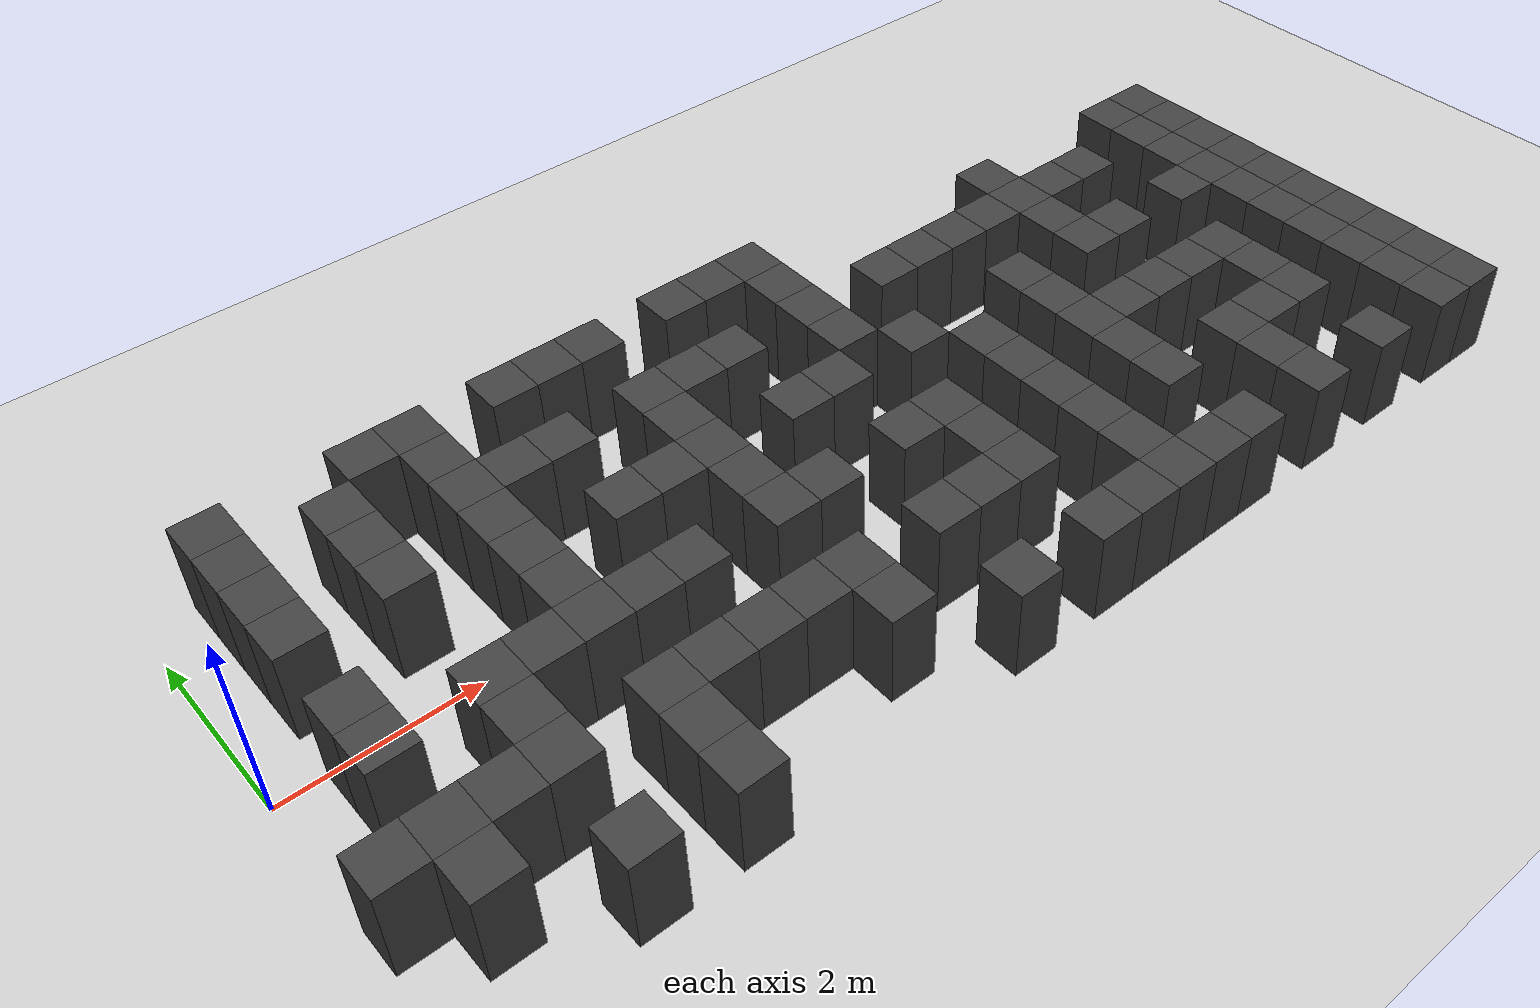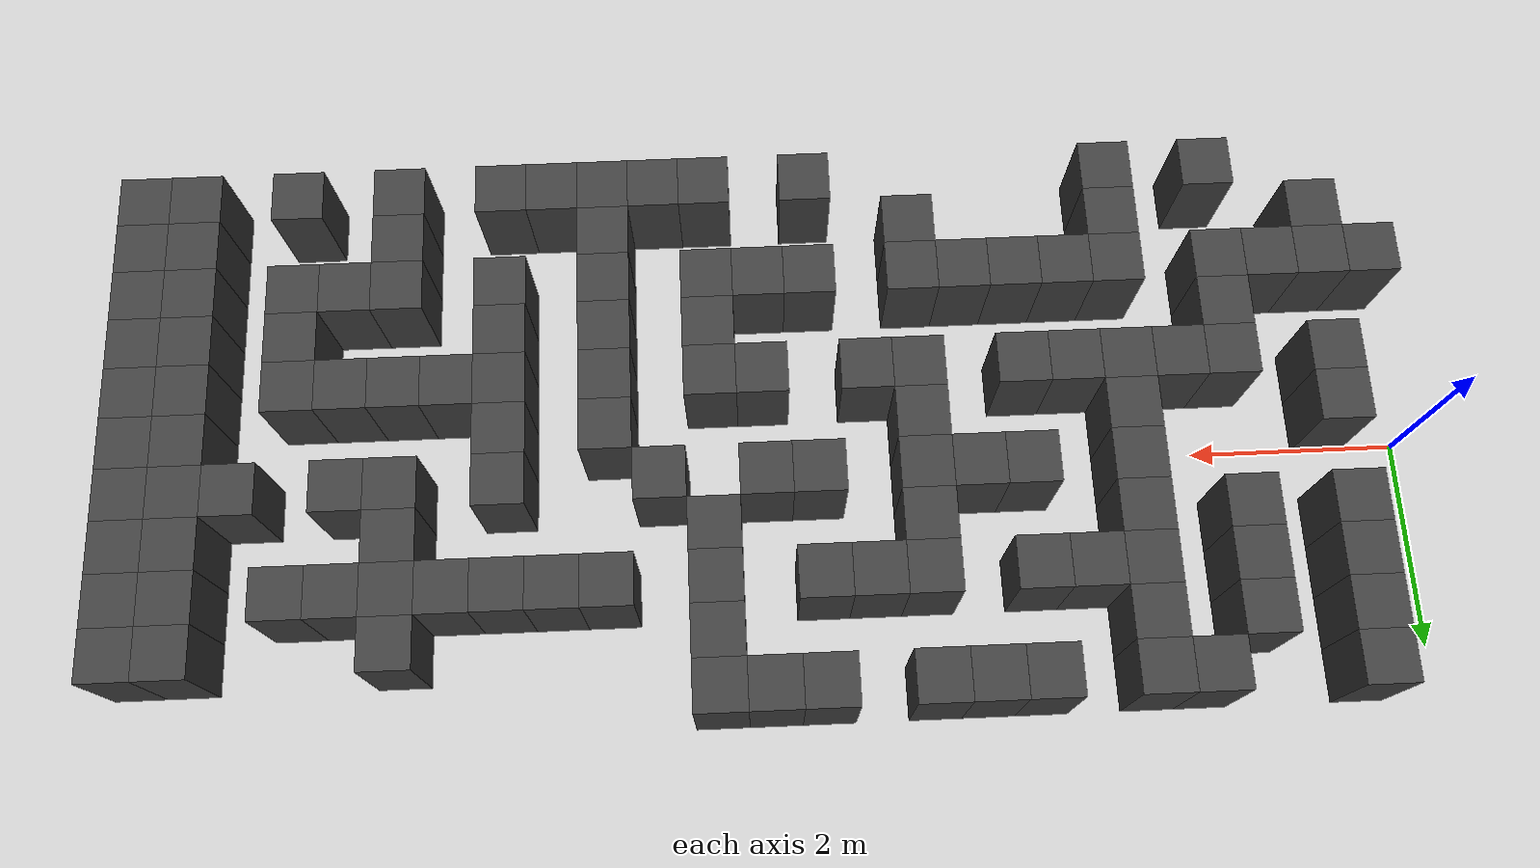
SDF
<sdf version="1.7">
 <world name="map_16734">
  <model name="ground_plane">
   <static>true</static>
   <link name="link">
    <collision name="collision">
     <geometry><plane><normal>0 0 1</normal><size>200 200</size></plane></geometry>
    </collision>
    <visual name="visual">
     <geometry><plane><normal>0 0 1</normal><size>200 200</size></plane></geometry>
     <material><ambient>0.8 0.8 0.8 1</ambient><diffuse>0.8 0.8 0.8 1</diffuse></material>
    </visual>
   </link>
  </model>
  <model name="maze_environment">
   <static>true</static>
   <link name="wall_504">
    <pose>0.750 2.250 0.500 0 0 0</pose>
    <collision name="col"><geometry><box><size>0.5 0.5 1.0</size></box></geometry></collision>
    <visual name="vis">
     <geometry><box><size>0.5 0.5 1.0</size></box></geometry>
     <material><ambient>0.15 0.15 0.15 1</ambient><diffuse>0.25 0.25 0.25 1</diffuse></material>
    </visual>
   </link>
   <link name="wall_505">
    <pose>2.250 2.250 0.500 0 0 0</pose>
    <collision name="col"><geometry><box><size>0.5 0.5 1.0</size></box></geometry></collision>
    <visual name="vis">
     <geometry><box><size>0.5 0.5 1.0</size></box></geometry>
     <material><ambient>0.15 0.15 0.15 1</ambient><diffuse>0.25 0.25 0.25 1</diffuse></material>
    </visual>
   </link>
   <link name="wall_506">
    <pose>2.750 2.250 0.500 0 0 0</pose>
    <collision name="col"><geometry><box><size>0.5 0.5 1.0</size></box></geometry></collision>
    <visual name="vis">
     <geometry><box><size>0.5 0.5 1.0</size></box></geometry>
     <material><ambient>0.15 0.15 0.15 1</ambient><diffuse>0.25 0.25 0.25 1</diffuse></material>
    </visual>
   </link>
   <link name="wall_507">
    <pose>3.750 2.250 0.500 0 0 0</pose>
    <collision name="col"><geometry><box><size>0.5 0.5 1.0</size></box></geometry></collision>
    <visual name="vis">
     <geometry><box><size>0.5 0.5 1.0</size></box></geometry>
     <material><ambient>0.15 0.15 0.15 1</ambient><diffuse>0.25 0.25 0.25 1</diffuse></material>
    </visual>
   </link>
   <link name="wall_508">
    <pose>4.250 2.250 0.500 0 0 0</pose>
    <collision name="col"><geometry><box><size>0.5 0.5 1.0</size></box></geometry></collision>
    <visual name="vis">
     <geometry><box><size>0.5 0.5 1.0</size></box></geometry>
     <material><ambient>0.15 0.15 0.15 1</ambient><diffuse>0.25 0.25 0.25 1</diffuse></material>
    </visual>
   </link>
   <link name="wall_509">
    <pose>4.750 2.250 0.500 0 0 0</pose>
    <collision name="col"><geometry><box><size>0.5 0.5 1.0</size></box></geometry></collision>
    <visual name="vis">
     <geometry><box><size>0.5 0.5 1.0</size></box></geometry>
     <material><ambient>0.15 0.15 0.15 1</ambient><diffuse>0.25 0.25 0.25 1</diffuse></material>
    </visual>
   </link>
   <link name="wall_510">
    <pose>5.750 2.250 0.500 0 0 0</pose>
    <collision name="col"><geometry><box><size>0.5 0.5 1.0</size></box></geometry></collision>
    <visual name="vis">
     <geometry><box><size>0.5 0.5 1.0</size></box></geometry>
     <material><ambient>0.15 0.15 0.15 1</ambient><diffuse>0.25 0.25 0.25 1</diffuse></material>
    </visual>
   </link>
   <link name="wall_511">
    <pose>6.250 2.250 0.500 0 0 0</pose>
    <collision name="col"><geometry><box><size>0.5 0.5 1.0</size></box></geometry></collision>
    <visual name="vis">
     <geometry><box><size>0.5 0.5 1.0</size></box></geometry>
     <material><ambient>0.15 0.15 0.15 1</ambient><diffuse>0.25 0.25 0.25 1</diffuse></material>
    </visual>
   </link>
   <link name="wall_512">
    <pose>6.750 2.250 0.500 0 0 0</pose>
    <collision name="col"><geometry><box><size>0.5 0.5 1.0</size></box></geometry></collision>
    <visual name="vis">
     <geometry><box><size>0.5 0.5 1.0</size></box></geometry>
     <material><ambient>0.15 0.15 0.15 1</ambient><diffuse>0.25 0.25 0.25 1</diffuse></material>
    </visual>
   </link>
   <link name="wall_528">
    <pose>0.750 1.750 0.500 0 0 0</pose>
    <collision name="col"><geometry><box><size>0.5 0.5 1.0</size></box></geometry></collision>
    <visual name="vis">
     <geometry><box><size>0.5 0.5 1.0</size></box></geometry>
     <material><ambient>0.15 0.15 0.15 1</ambient><diffuse>0.25 0.25 0.25 1</diffuse></material>
    </visual>
   </link>
   <link name="wall_529">
    <pose>1.750 1.750 0.500 0 0 0</pose>
    <collision name="col"><geometry><box><size>0.5 0.5 1.0</size></box></geometry></collision>
    <visual name="vis">
     <geometry><box><size>0.5 0.5 1.0</size></box></geometry>
     <material><ambient>0.15 0.15 0.15 1</ambient><diffuse>0.25 0.25 0.25 1</diffuse></material>
    </visual>
   </link>
   <link name="wall_530">
    <pose>2.750 1.750 0.500 0 0 0</pose>
    <collision name="col"><geometry><box><size>0.5 0.5 1.0</size></box></geometry></collision>
    <visual name="vis">
     <geometry><box><size>0.5 0.5 1.0</size></box></geometry>
     <material><ambient>0.15 0.15 0.15 1</ambient><diffuse>0.25 0.25 0.25 1</diffuse></material>
    </visual>
   </link>
   <link name="wall_531">
    <pose>6.750 1.750 0.500 0 0 0</pose>
    <collision name="col"><geometry><box><size>0.5 0.5 1.0</size></box></geometry></collision>
    <visual name="vis">
     <geometry><box><size>0.5 0.5 1.0</size></box></geometry>
     <material><ambient>0.15 0.15 0.15 1</ambient><diffuse>0.25 0.25 0.25 1</diffuse></material>
    </visual>
   </link>
   <link name="wall_532">
    <pose>9.750 1.750 0.500 0 0 0</pose>
    <collision name="col"><geometry><box><size>0.5 0.5 1.0</size></box></geometry></collision>
    <visual name="vis">
     <geometry><box><size>0.5 0.5 1.0</size></box></geometry>
     <material><ambient>0.15 0.15 0.15 1</ambient><diffuse>0.25 0.25 0.25 1</diffuse></material>
    </visual>
   </link>
   <link name="wall_533">
    <pose>11.750 1.750 0.500 0 0 0</pose>
    <collision name="col"><geometry><box><size>0.5 0.5 1.0</size></box></geometry></collision>
    <visual name="vis">
     <geometry><box><size>0.5 0.5 1.0</size></box></geometry>
     <material><ambient>0.15 0.15 0.15 1</ambient><diffuse>0.25 0.25 0.25 1</diffuse></material>
    </visual>
   </link>
   <link name="wall_534">
    <pose>12.250 1.750 0.500 0 0 0</pose>
    <collision name="col"><geometry><box><size>0.5 0.5 1.0</size></box></geometry></collision>
    <visual name="vis">
     <geometry><box><size>0.5 0.5 1.0</size></box></geometry>
     <material><ambient>0.15 0.15 0.15 1</ambient><diffuse>0.25 0.25 0.25 1</diffuse></material>
    </visual>
   </link>
   <link name="wall_553">
    <pose>0.750 1.250 0.500 0 0 0</pose>
    <collision name="col"><geometry><box><size>0.5 0.5 1.0</size></box></geometry></collision>
    <visual name="vis">
     <geometry><box><size>0.5 0.5 1.0</size></box></geometry>
     <material><ambient>0.15 0.15 0.15 1</ambient><diffuse>0.25 0.25 0.25 1</diffuse></material>
    </visual>
   </link>
   <link name="wall_554">
    <pose>1.750 1.250 0.500 0 0 0</pose>
    <collision name="col"><geometry><box><size>0.5 0.5 1.0</size></box></geometry></collision>
    <visual name="vis">
     <geometry><box><size>0.5 0.5 1.0</size></box></geometry>
     <material><ambient>0.15 0.15 0.15 1</ambient><diffuse>0.25 0.25 0.25 1</diffuse></material>
    </visual>
   </link>
   <link name="wall_555">
    <pose>2.750 1.250 0.500 0 0 0</pose>
    <collision name="col"><geometry><box><size>0.5 0.5 1.0</size></box></geometry></collision>
    <visual name="vis">
     <geometry><box><size>0.5 0.5 1.0</size></box></geometry>
     <material><ambient>0.15 0.15 0.15 1</ambient><diffuse>0.25 0.25 0.25 1</diffuse></material>
    </visual>
   </link>
   <link name="wall_556">
    <pose>3.250 1.250 0.500 0 0 0</pose>
    <collision name="col"><geometry><box><size>0.5 0.5 1.0</size></box></geometry></collision>
    <visual name="vis">
     <geometry><box><size>0.5 0.5 1.0</size></box></geometry>
     <material><ambient>0.15 0.15 0.15 1</ambient><diffuse>0.25 0.25 0.25 1</diffuse></material>
    </visual>
   </link>
   <link name="wall_557">
    <pose>3.750 1.250 0.500 0 0 0</pose>
    <collision name="col"><geometry><box><size>0.5 0.5 1.0</size></box></geometry></collision>
    <visual name="vis">
     <geometry><box><size>0.5 0.5 1.0</size></box></geometry>
     <material><ambient>0.15 0.15 0.15 1</ambient><diffuse>0.25 0.25 0.25 1</diffuse></material>
    </visual>
   </link>
   <link name="wall_558">
    <pose>4.750 1.250 0.500 0 0 0</pose>
    <collision name="col"><geometry><box><size>0.5 0.5 1.0</size></box></geometry></collision>
    <visual name="vis">
     <geometry><box><size>0.5 0.5 1.0</size></box></geometry>
     <material><ambient>0.15 0.15 0.15 1</ambient><diffuse>0.25 0.25 0.25 1</diffuse></material>
    </visual>
   </link>
   <link name="wall_559">
    <pose>5.250 1.250 0.500 0 0 0</pose>
    <collision name="col"><geometry><box><size>0.5 0.5 1.0</size></box></geometry></collision>
    <visual name="vis">
     <geometry><box><size>0.5 0.5 1.0</size></box></geometry>
     <material><ambient>0.15 0.15 0.15 1</ambient><diffuse>0.25 0.25 0.25 1</diffuse></material>
    </visual>
   </link>
   <link name="wall_560">
    <pose>5.750 1.250 0.500 0 0 0</pose>
    <collision name="col"><geometry><box><size>0.5 0.5 1.0</size></box></geometry></collision>
    <visual name="vis">
     <geometry><box><size>0.5 0.5 1.0</size></box></geometry>
     <material><ambient>0.15 0.15 0.15 1</ambient><diffuse>0.25 0.25 0.25 1</diffuse></material>
    </visual>
   </link>
   <link name="wall_561">
    <pose>6.750 1.250 0.500 0 0 0</pose>
    <collision name="col"><geometry><box><size>0.5 0.5 1.0</size></box></geometry></collision>
    <visual name="vis">
     <geometry><box><size>0.5 0.5 1.0</size></box></geometry>
     <material><ambient>0.15 0.15 0.15 1</ambient><diffuse>0.25 0.25 0.25 1</diffuse></material>
    </visual>
   </link>
   <link name="wall_562">
    <pose>7.750 1.250 0.500 0 0 0</pose>
    <collision name="col"><geometry><box><size>0.5 0.5 1.0</size></box></geometry></collision>
    <visual name="vis">
     <geometry><box><size>0.5 0.5 1.0</size></box></geometry>
     <material><ambient>0.15 0.15 0.15 1</ambient><diffuse>0.25 0.25 0.25 1</diffuse></material>
    </visual>
   </link>
   <link name="wall_563">
    <pose>8.250 1.250 0.500 0 0 0</pose>
    <collision name="col"><geometry><box><size>0.5 0.5 1.0</size></box></geometry></collision>
    <visual name="vis">
     <geometry><box><size>0.5 0.5 1.0</size></box></geometry>
     <material><ambient>0.15 0.15 0.15 1</ambient><diffuse>0.25 0.25 0.25 1</diffuse></material>
    </visual>
   </link>
   <link name="wall_564">
    <pose>8.750 1.250 0.500 0 0 0</pose>
    <collision name="col"><geometry><box><size>0.5 0.5 1.0</size></box></geometry></collision>
    <visual name="vis">
     <geometry><box><size>0.5 0.5 1.0</size></box></geometry>
     <material><ambient>0.15 0.15 0.15 1</ambient><diffuse>0.25 0.25 0.25 1</diffuse></material>
    </visual>
   </link>
   <link name="wall_565">
    <pose>9.250 1.250 0.500 0 0 0</pose>
    <collision name="col"><geometry><box><size>0.5 0.5 1.0</size></box></geometry></collision>
    <visual name="vis">
     <geometry><box><size>0.5 0.5 1.0</size></box></geometry>
     <material><ambient>0.15 0.15 0.15 1</ambient><diffuse>0.25 0.25 0.25 1</diffuse></material>
    </visual>
   </link>
   <link name="wall_566">
    <pose>9.750 1.250 0.500 0 0 0</pose>
    <collision name="col"><geometry><box><size>0.5 0.5 1.0</size></box></geometry></collision>
    <visual name="vis">
     <geometry><box><size>0.5 0.5 1.0</size></box></geometry>
     <material><ambient>0.15 0.15 0.15 1</ambient><diffuse>0.25 0.25 0.25 1</diffuse></material>
    </visual>
   </link>
   <link name="wall_567">
    <pose>10.250 1.250 0.500 0 0 0</pose>
    <collision name="col"><geometry><box><size>0.5 0.5 1.0</size></box></geometry></collision>
    <visual name="vis">
     <geometry><box><size>0.5 0.5 1.0</size></box></geometry>
     <material><ambient>0.15 0.15 0.15 1</ambient><diffuse>0.25 0.25 0.25 1</diffuse></material>
    </visual>
   </link>
   <link name="wall_568">
    <pose>10.750 1.250 0.500 0 0 0</pose>
    <collision name="col"><geometry><box><size>0.5 0.5 1.0</size></box></geometry></collision>
    <visual name="vis">
     <geometry><box><size>0.5 0.5 1.0</size></box></geometry>
     <material><ambient>0.15 0.15 0.15 1</ambient><diffuse>0.25 0.25 0.25 1</diffuse></material>
    </visual>
   </link>
   <link name="wall_569">
    <pose>11.750 1.250 0.500 0 0 0</pose>
    <collision name="col"><geometry><box><size>0.5 0.5 1.0</size></box></geometry></collision>
    <visual name="vis">
     <geometry><box><size>0.5 0.5 1.0</size></box></geometry>
     <material><ambient>0.15 0.15 0.15 1</ambient><diffuse>0.25 0.25 0.25 1</diffuse></material>
    </visual>
   </link>
   <link name="wall_570">
    <pose>12.250 1.250 0.500 0 0 0</pose>
    <collision name="col"><geometry><box><size>0.5 0.5 1.0</size></box></geometry></collision>
    <visual name="vis">
     <geometry><box><size>0.5 0.5 1.0</size></box></geometry>
     <material><ambient>0.15 0.15 0.15 1</ambient><diffuse>0.25 0.25 0.25 1</diffuse></material>
    </visual>
   </link>
   <link name="wall_577">
    <pose>0.750 0.750 0.500 0 0 0</pose>
    <collision name="col"><geometry><box><size>0.5 0.5 1.0</size></box></geometry></collision>
    <visual name="vis">
     <geometry><box><size>0.5 0.5 1.0</size></box></geometry>
     <material><ambient>0.15 0.15 0.15 1</ambient><diffuse>0.25 0.25 0.25 1</diffuse></material>
    </visual>
   </link>
   <link name="wall_578">
    <pose>1.750 0.750 0.500 0 0 0</pose>
    <collision name="col"><geometry><box><size>0.5 0.5 1.0</size></box></geometry></collision>
    <visual name="vis">
     <geometry><box><size>0.5 0.5 1.0</size></box></geometry>
     <material><ambient>0.15 0.15 0.15 1</ambient><diffuse>0.25 0.25 0.25 1</diffuse></material>
    </visual>
   </link>
   <link name="wall_579">
    <pose>2.750 0.750 0.500 0 0 0</pose>
    <collision name="col"><geometry><box><size>0.5 0.5 1.0</size></box></geometry></collision>
    <visual name="vis">
     <geometry><box><size>0.5 0.5 1.0</size></box></geometry>
     <material><ambient>0.15 0.15 0.15 1</ambient><diffuse>0.25 0.25 0.25 1</diffuse></material>
    </visual>
   </link>
   <link name="wall_580">
    <pose>4.750 0.750 0.500 0 0 0</pose>
    <collision name="col"><geometry><box><size>0.5 0.5 1.0</size></box></geometry></collision>
    <visual name="vis">
     <geometry><box><size>0.5 0.5 1.0</size></box></geometry>
     <material><ambient>0.15 0.15 0.15 1</ambient><diffuse>0.25 0.25 0.25 1</diffuse></material>
    </visual>
   </link>
   <link name="wall_581">
    <pose>6.750 0.750 0.500 0 0 0</pose>
    <collision name="col"><geometry><box><size>0.5 0.5 1.0</size></box></geometry></collision>
    <visual name="vis">
     <geometry><box><size>0.5 0.5 1.0</size></box></geometry>
     <material><ambient>0.15 0.15 0.15 1</ambient><diffuse>0.25 0.25 0.25 1</diffuse></material>
    </visual>
   </link>
   <link name="wall_582">
    <pose>9.750 0.750 0.500 0 0 0</pose>
    <collision name="col"><geometry><box><size>0.5 0.5 1.0</size></box></geometry></collision>
    <visual name="vis">
     <geometry><box><size>0.5 0.5 1.0</size></box></geometry>
     <material><ambient>0.15 0.15 0.15 1</ambient><diffuse>0.25 0.25 0.25 1</diffuse></material>
    </visual>
   </link>
   <link name="wall_583">
    <pose>11.750 0.750 0.500 0 0 0</pose>
    <collision name="col"><geometry><box><size>0.5 0.5 1.0</size></box></geometry></collision>
    <visual name="vis">
     <geometry><box><size>0.5 0.5 1.0</size></box></geometry>
     <material><ambient>0.15 0.15 0.15 1</ambient><diffuse>0.25 0.25 0.25 1</diffuse></material>
    </visual>
   </link>
   <link name="wall_584">
    <pose>12.250 0.750 0.500 0 0 0</pose>
    <collision name="col"><geometry><box><size>0.5 0.5 1.0</size></box></geometry></collision>
    <visual name="vis">
     <geometry><box><size>0.5 0.5 1.0</size></box></geometry>
     <material><ambient>0.15 0.15 0.15 1</ambient><diffuse>0.25 0.25 0.25 1</diffuse></material>
    </visual>
   </link>
   <link name="wall_602">
    <pose>2.750 0.250 0.500 0 0 0</pose>
    <collision name="col"><geometry><box><size>0.5 0.5 1.0</size></box></geometry></collision>
    <visual name="vis">
     <geometry><box><size>0.5 0.5 1.0</size></box></geometry>
     <material><ambient>0.15 0.15 0.15 1</ambient><diffuse>0.25 0.25 0.25 1</diffuse></material>
    </visual>
   </link>
   <link name="wall_603">
    <pose>3.750 0.250 0.500 0 0 0</pose>
    <collision name="col"><geometry><box><size>0.5 0.5 1.0</size></box></geometry></collision>
    <visual name="vis">
     <geometry><box><size>0.5 0.5 1.0</size></box></geometry>
     <material><ambient>0.15 0.15 0.15 1</ambient><diffuse>0.25 0.25 0.25 1</diffuse></material>
    </visual>
   </link>
   <link name="wall_604">
    <pose>4.250 0.250 0.500 0 0 0</pose>
    <collision name="col"><geometry><box><size>0.5 0.5 1.0</size></box></geometry></collision>
    <visual name="vis">
     <geometry><box><size>0.5 0.5 1.0</size></box></geometry>
     <material><ambient>0.15 0.15 0.15 1</ambient><diffuse>0.25 0.25 0.25 1</diffuse></material>
    </visual>
   </link>
   <link name="wall_605">
    <pose>4.750 0.250 0.500 0 0 0</pose>
    <collision name="col"><geometry><box><size>0.5 0.5 1.0</size></box></geometry></collision>
    <visual name="vis">
     <geometry><box><size>0.5 0.5 1.0</size></box></geometry>
     <material><ambient>0.15 0.15 0.15 1</ambient><diffuse>0.25 0.25 0.25 1</diffuse></material>
    </visual>
   </link>
   <link name="wall_606">
    <pose>5.750 0.250 0.500 0 0 0</pose>
    <collision name="col"><geometry><box><size>0.5 0.5 1.0</size></box></geometry></collision>
    <visual name="vis">
     <geometry><box><size>0.5 0.5 1.0</size></box></geometry>
     <material><ambient>0.15 0.15 0.15 1</ambient><diffuse>0.25 0.25 0.25 1</diffuse></material>
    </visual>
   </link>
   <link name="wall_607">
    <pose>6.250 0.250 0.500 0 0 0</pose>
    <collision name="col"><geometry><box><size>0.5 0.5 1.0</size></box></geometry></collision>
    <visual name="vis">
     <geometry><box><size>0.5 0.5 1.0</size></box></geometry>
     <material><ambient>0.15 0.15 0.15 1</ambient><diffuse>0.25 0.25 0.25 1</diffuse></material>
    </visual>
   </link>
   <link name="wall_608">
    <pose>7.250 0.250 0.500 0 0 0</pose>
    <collision name="col"><geometry><box><size>0.5 0.5 1.0</size></box></geometry></collision>
    <visual name="vis">
     <geometry><box><size>0.5 0.5 1.0</size></box></geometry>
     <material><ambient>0.15 0.15 0.15 1</ambient><diffuse>0.25 0.25 0.25 1</diffuse></material>
    </visual>
   </link>
   <link name="wall_609">
    <pose>8.750 0.250 0.500 0 0 0</pose>
    <collision name="col"><geometry><box><size>0.5 0.5 1.0</size></box></geometry></collision>
    <visual name="vis">
     <geometry><box><size>0.5 0.5 1.0</size></box></geometry>
     <material><ambient>0.15 0.15 0.15 1</ambient><diffuse>0.25 0.25 0.25 1</diffuse></material>
    </visual>
   </link>
   <link name="wall_610">
    <pose>9.750 0.250 0.500 0 0 0</pose>
    <collision name="col"><geometry><box><size>0.5 0.5 1.0</size></box></geometry></collision>
    <visual name="vis">
     <geometry><box><size>0.5 0.5 1.0</size></box></geometry>
     <material><ambient>0.15 0.15 0.15 1</ambient><diffuse>0.25 0.25 0.25 1</diffuse></material>
    </visual>
   </link>
   <link name="wall_611">
    <pose>10.250 0.250 0.500 0 0 0</pose>
    <collision name="col"><geometry><box><size>0.5 0.5 1.0</size></box></geometry></collision>
    <visual name="vis">
     <geometry><box><size>0.5 0.5 1.0</size></box></geometry>
     <material><ambient>0.15 0.15 0.15 1</ambient><diffuse>0.25 0.25 0.25 1</diffuse></material>
    </visual>
   </link>
   <link name="wall_612">
    <pose>11.250 0.250 0.500 0 0 0</pose>
    <collision name="col"><geometry><box><size>0.5 0.5 1.0</size></box></geometry></collision>
    <visual name="vis">
     <geometry><box><size>0.5 0.5 1.0</size></box></geometry>
     <material><ambient>0.15 0.15 0.15 1</ambient><diffuse>0.25 0.25 0.25 1</diffuse></material>
    </visual>
   </link>
   <link name="wall_613">
    <pose>11.750 0.250 0.500 0 0 0</pose>
    <collision name="col"><geometry><box><size>0.5 0.5 1.0</size></box></geometry></collision>
    <visual name="vis">
     <geometry><box><size>0.5 0.5 1.0</size></box></geometry>
     <material><ambient>0.15 0.15 0.15 1</ambient><diffuse>0.25 0.25 0.25 1</diffuse></material>
    </visual>
   </link>
   <link name="wall_614">
    <pose>12.250 0.250 0.500 0 0 0</pose>
    <collision name="col"><geometry><box><size>0.5 0.5 1.0</size></box></geometry></collision>
    <visual name="vis">
     <geometry><box><size>0.5 0.5 1.0</size></box></geometry>
     <material><ambient>0.15 0.15 0.15 1</ambient><diffuse>0.25 0.25 0.25 1</diffuse></material>
    </visual>
   </link>
   <link name="wall_621">
    <pose>0.750 -0.250 0.500 0 0 0</pose>
    <collision name="col"><geometry><box><size>0.5 0.5 1.0</size></box></geometry></collision>
    <visual name="vis">
     <geometry><box><size>0.5 0.5 1.0</size></box></geometry>
     <material><ambient>0.15 0.15 0.15 1</ambient><diffuse>0.25 0.25 0.25 1</diffuse></material>
    </visual>
   </link>
   <link name="wall_622">
    <pose>2.750 -0.250 0.500 0 0 0</pose>
    <collision name="col"><geometry><box><size>0.5 0.5 1.0</size></box></geometry></collision>
    <visual name="vis">
     <geometry><box><size>0.5 0.5 1.0</size></box></geometry>
     <material><ambient>0.15 0.15 0.15 1</ambient><diffuse>0.25 0.25 0.25 1</diffuse></material>
    </visual>
   </link>
   <link name="wall_623">
    <pose>4.750 -0.250 0.500 0 0 0</pose>
    <collision name="col"><geometry><box><size>0.5 0.5 1.0</size></box></geometry></collision>
    <visual name="vis">
     <geometry><box><size>0.5 0.5 1.0</size></box></geometry>
     <material><ambient>0.15 0.15 0.15 1</ambient><diffuse>0.25 0.25 0.25 1</diffuse></material>
    </visual>
   </link>
   <link name="wall_624">
    <pose>7.750 -0.250 0.500 0 0 0</pose>
    <collision name="col"><geometry><box><size>0.5 0.5 1.0</size></box></geometry></collision>
    <visual name="vis">
     <geometry><box><size>0.5 0.5 1.0</size></box></geometry>
     <material><ambient>0.15 0.15 0.15 1</ambient><diffuse>0.25 0.25 0.25 1</diffuse></material>
    </visual>
   </link>
   <link name="wall_625">
    <pose>8.750 -0.250 0.500 0 0 0</pose>
    <collision name="col"><geometry><box><size>0.5 0.5 1.0</size></box></geometry></collision>
    <visual name="vis">
     <geometry><box><size>0.5 0.5 1.0</size></box></geometry>
     <material><ambient>0.15 0.15 0.15 1</ambient><diffuse>0.25 0.25 0.25 1</diffuse></material>
    </visual>
   </link>
   <link name="wall_626">
    <pose>11.750 -0.250 0.500 0 0 0</pose>
    <collision name="col"><geometry><box><size>0.5 0.5 1.0</size></box></geometry></collision>
    <visual name="vis">
     <geometry><box><size>0.5 0.5 1.0</size></box></geometry>
     <material><ambient>0.15 0.15 0.15 1</ambient><diffuse>0.25 0.25 0.25 1</diffuse></material>
    </visual>
   </link>
   <link name="wall_627">
    <pose>12.250 -0.250 0.500 0 0 0</pose>
    <collision name="col"><geometry><box><size>0.5 0.5 1.0</size></box></geometry></collision>
    <visual name="vis">
     <geometry><box><size>0.5 0.5 1.0</size></box></geometry>
     <material><ambient>0.15 0.15 0.15 1</ambient><diffuse>0.25 0.25 0.25 1</diffuse></material>
    </visual>
   </link>
   <link name="wall_649">
    <pose>0.750 -0.750 0.500 0 0 0</pose>
    <collision name="col"><geometry><box><size>0.5 0.5 1.0</size></box></geometry></collision>
    <visual name="vis">
     <geometry><box><size>0.5 0.5 1.0</size></box></geometry>
     <material><ambient>0.15 0.15 0.15 1</ambient><diffuse>0.25 0.25 0.25 1</diffuse></material>
    </visual>
   </link>
   <link name="wall_650">
    <pose>1.750 -0.750 0.500 0 0 0</pose>
    <collision name="col"><geometry><box><size>0.5 0.5 1.0</size></box></geometry></collision>
    <visual name="vis">
     <geometry><box><size>0.5 0.5 1.0</size></box></geometry>
     <material><ambient>0.15 0.15 0.15 1</ambient><diffuse>0.25 0.25 0.25 1</diffuse></material>
    </visual>
   </link>
   <link name="wall_651">
    <pose>2.250 -0.750 0.500 0 0 0</pose>
    <collision name="col"><geometry><box><size>0.5 0.5 1.0</size></box></geometry></collision>
    <visual name="vis">
     <geometry><box><size>0.5 0.5 1.0</size></box></geometry>
     <material><ambient>0.15 0.15 0.15 1</ambient><diffuse>0.25 0.25 0.25 1</diffuse></material>
    </visual>
   </link>
   <link name="wall_652">
    <pose>2.750 -0.750 0.500 0 0 0</pose>
    <collision name="col"><geometry><box><size>0.5 0.5 1.0</size></box></geometry></collision>
    <visual name="vis">
     <geometry><box><size>0.5 0.5 1.0</size></box></geometry>
     <material><ambient>0.15 0.15 0.15 1</ambient><diffuse>0.25 0.25 0.25 1</diffuse></material>
    </visual>
   </link>
   <link name="wall_653">
    <pose>3.250 -0.750 0.500 0 0 0</pose>
    <collision name="col"><geometry><box><size>0.5 0.5 1.0</size></box></geometry></collision>
    <visual name="vis">
     <geometry><box><size>0.5 0.5 1.0</size></box></geometry>
     <material><ambient>0.15 0.15 0.15 1</ambient><diffuse>0.25 0.25 0.25 1</diffuse></material>
    </visual>
   </link>
   <link name="wall_654">
    <pose>3.750 -0.750 0.500 0 0 0</pose>
    <collision name="col"><geometry><box><size>0.5 0.5 1.0</size></box></geometry></collision>
    <visual name="vis">
     <geometry><box><size>0.5 0.5 1.0</size></box></geometry>
     <material><ambient>0.15 0.15 0.15 1</ambient><diffuse>0.25 0.25 0.25 1</diffuse></material>
    </visual>
   </link>
   <link name="wall_655">
    <pose>4.750 -0.750 0.500 0 0 0</pose>
    <collision name="col"><geometry><box><size>0.5 0.5 1.0</size></box></geometry></collision>
    <visual name="vis">
     <geometry><box><size>0.5 0.5 1.0</size></box></geometry>
     <material><ambient>0.15 0.15 0.15 1</ambient><diffuse>0.25 0.25 0.25 1</diffuse></material>
    </visual>
   </link>
   <link name="wall_656">
    <pose>5.250 -0.750 0.500 0 0 0</pose>
    <collision name="col"><geometry><box><size>0.5 0.5 1.0</size></box></geometry></collision>
    <visual name="vis">
     <geometry><box><size>0.5 0.5 1.0</size></box></geometry>
     <material><ambient>0.15 0.15 0.15 1</ambient><diffuse>0.25 0.25 0.25 1</diffuse></material>
    </visual>
   </link>
   <link name="wall_657">
    <pose>6.250 -0.750 0.500 0 0 0</pose>
    <collision name="col"><geometry><box><size>0.5 0.5 1.0</size></box></geometry></collision>
    <visual name="vis">
     <geometry><box><size>0.5 0.5 1.0</size></box></geometry>
     <material><ambient>0.15 0.15 0.15 1</ambient><diffuse>0.25 0.25 0.25 1</diffuse></material>
    </visual>
   </link>
   <link name="wall_658">
    <pose>6.750 -0.750 0.500 0 0 0</pose>
    <collision name="col"><geometry><box><size>0.5 0.5 1.0</size></box></geometry></collision>
    <visual name="vis">
     <geometry><box><size>0.5 0.5 1.0</size></box></geometry>
     <material><ambient>0.15 0.15 0.15 1</ambient><diffuse>0.25 0.25 0.25 1</diffuse></material>
    </visual>
   </link>
   <link name="wall_659">
    <pose>7.750 -0.750 0.500 0 0 0</pose>
    <collision name="col"><geometry><box><size>0.5 0.5 1.0</size></box></geometry></collision>
    <visual name="vis">
     <geometry><box><size>0.5 0.5 1.0</size></box></geometry>
     <material><ambient>0.15 0.15 0.15 1</ambient><diffuse>0.25 0.25 0.25 1</diffuse></material>
    </visual>
   </link>
   <link name="wall_660">
    <pose>8.750 -0.750 0.500 0 0 0</pose>
    <collision name="col"><geometry><box><size>0.5 0.5 1.0</size></box></geometry></collision>
    <visual name="vis">
     <geometry><box><size>0.5 0.5 1.0</size></box></geometry>
     <material><ambient>0.15 0.15 0.15 1</ambient><diffuse>0.25 0.25 0.25 1</diffuse></material>
    </visual>
   </link>
   <link name="wall_661">
    <pose>9.250 -0.750 0.500 0 0 0</pose>
    <collision name="col"><geometry><box><size>0.5 0.5 1.0</size></box></geometry></collision>
    <visual name="vis">
     <geometry><box><size>0.5 0.5 1.0</size></box></geometry>
     <material><ambient>0.15 0.15 0.15 1</ambient><diffuse>0.25 0.25 0.25 1</diffuse></material>
    </visual>
   </link>
   <link name="wall_662">
    <pose>9.750 -0.750 0.500 0 0 0</pose>
    <collision name="col"><geometry><box><size>0.5 0.5 1.0</size></box></geometry></collision>
    <visual name="vis">
     <geometry><box><size>0.5 0.5 1.0</size></box></geometry>
     <material><ambient>0.15 0.15 0.15 1</ambient><diffuse>0.25 0.25 0.25 1</diffuse></material>
    </visual>
   </link>
   <link name="wall_663">
    <pose>10.250 -0.750 0.500 0 0 0</pose>
    <collision name="col"><geometry><box><size>0.5 0.5 1.0</size></box></geometry></collision>
    <visual name="vis">
     <geometry><box><size>0.5 0.5 1.0</size></box></geometry>
     <material><ambient>0.15 0.15 0.15 1</ambient><diffuse>0.25 0.25 0.25 1</diffuse></material>
    </visual>
   </link>
   <link name="wall_664">
    <pose>10.750 -0.750 0.500 0 0 0</pose>
    <collision name="col"><geometry><box><size>0.5 0.5 1.0</size></box></geometry></collision>
    <visual name="vis">
     <geometry><box><size>0.5 0.5 1.0</size></box></geometry>
     <material><ambient>0.15 0.15 0.15 1</ambient><diffuse>0.25 0.25 0.25 1</diffuse></material>
    </visual>
   </link>
   <link name="wall_665">
    <pose>11.750 -0.750 0.500 0 0 0</pose>
    <collision name="col"><geometry><box><size>0.5 0.5 1.0</size></box></geometry></collision>
    <visual name="vis">
     <geometry><box><size>0.5 0.5 1.0</size></box></geometry>
     <material><ambient>0.15 0.15 0.15 1</ambient><diffuse>0.25 0.25 0.25 1</diffuse></material>
    </visual>
   </link>
   <link name="wall_666">
    <pose>12.250 -0.750 0.500 0 0 0</pose>
    <collision name="col"><geometry><box><size>0.5 0.5 1.0</size></box></geometry></collision>
    <visual name="vis">
     <geometry><box><size>0.5 0.5 1.0</size></box></geometry>
     <material><ambient>0.15 0.15 0.15 1</ambient><diffuse>0.25 0.25 0.25 1</diffuse></material>
    </visual>
   </link>
   <link name="wall_674">
    <pose>1.750 -1.250 0.500 0 0 0</pose>
    <collision name="col"><geometry><box><size>0.5 0.5 1.0</size></box></geometry></collision>
    <visual name="vis">
     <geometry><box><size>0.5 0.5 1.0</size></box></geometry>
     <material><ambient>0.15 0.15 0.15 1</ambient><diffuse>0.25 0.25 0.25 1</diffuse></material>
    </visual>
   </link>
   <link name="wall_675">
    <pose>6.750 -1.250 0.500 0 0 0</pose>
    <collision name="col"><geometry><box><size>0.5 0.5 1.0</size></box></geometry></collision>
    <visual name="vis">
     <geometry><box><size>0.5 0.5 1.0</size></box></geometry>
     <material><ambient>0.15 0.15 0.15 1</ambient><diffuse>0.25 0.25 0.25 1</diffuse></material>
    </visual>
   </link>
   <link name="wall_676">
    <pose>7.750 -1.250 0.500 0 0 0</pose>
    <collision name="col"><geometry><box><size>0.5 0.5 1.0</size></box></geometry></collision>
    <visual name="vis">
     <geometry><box><size>0.5 0.5 1.0</size></box></geometry>
     <material><ambient>0.15 0.15 0.15 1</ambient><diffuse>0.25 0.25 0.25 1</diffuse></material>
    </visual>
   </link>
   <link name="wall_677">
    <pose>8.750 -1.250 0.500 0 0 0</pose>
    <collision name="col"><geometry><box><size>0.5 0.5 1.0</size></box></geometry></collision>
    <visual name="vis">
     <geometry><box><size>0.5 0.5 1.0</size></box></geometry>
     <material><ambient>0.15 0.15 0.15 1</ambient><diffuse>0.25 0.25 0.25 1</diffuse></material>
    </visual>
   </link>
   <link name="wall_678">
    <pose>10.750 -1.250 0.500 0 0 0</pose>
    <collision name="col"><geometry><box><size>0.5 0.5 1.0</size></box></geometry></collision>
    <visual name="vis">
     <geometry><box><size>0.5 0.5 1.0</size></box></geometry>
     <material><ambient>0.15 0.15 0.15 1</ambient><diffuse>0.25 0.25 0.25 1</diffuse></material>
    </visual>
   </link>
   <link name="wall_679">
    <pose>11.750 -1.250 0.500 0 0 0</pose>
    <collision name="col"><geometry><box><size>0.5 0.5 1.0</size></box></geometry></collision>
    <visual name="vis">
     <geometry><box><size>0.5 0.5 1.0</size></box></geometry>
     <material><ambient>0.15 0.15 0.15 1</ambient><diffuse>0.25 0.25 0.25 1</diffuse></material>
    </visual>
   </link>
   <link name="wall_680">
    <pose>12.250 -1.250 0.500 0 0 0</pose>
    <collision name="col"><geometry><box><size>0.5 0.5 1.0</size></box></geometry></collision>
    <visual name="vis">
     <geometry><box><size>0.5 0.5 1.0</size></box></geometry>
     <material><ambient>0.15 0.15 0.15 1</ambient><diffuse>0.25 0.25 0.25 1</diffuse></material>
    </visual>
   </link>
   <link name="wall_697">
    <pose>0.250 -1.750 0.500 0 0 0</pose>
    <collision name="col"><geometry><box><size>0.5 0.5 1.0</size></box></geometry></collision>
    <visual name="vis">
     <geometry><box><size>0.5 0.5 1.0</size></box></geometry>
     <material><ambient>0.15 0.15 0.15 1</ambient><diffuse>0.25 0.25 0.25 1</diffuse></material>
    </visual>
   </link>
   <link name="wall_698">
    <pose>0.750 -1.750 0.500 0 0 0</pose>
    <collision name="col"><geometry><box><size>0.5 0.5 1.0</size></box></geometry></collision>
    <visual name="vis">
     <geometry><box><size>0.5 0.5 1.0</size></box></geometry>
     <material><ambient>0.15 0.15 0.15 1</ambient><diffuse>0.25 0.25 0.25 1</diffuse></material>
    </visual>
   </link>
   <link name="wall_699">
    <pose>1.250 -1.750 0.500 0 0 0</pose>
    <collision name="col"><geometry><box><size>0.5 0.5 1.0</size></box></geometry></collision>
    <visual name="vis">
     <geometry><box><size>0.5 0.5 1.0</size></box></geometry>
     <material><ambient>0.15 0.15 0.15 1</ambient><diffuse>0.25 0.25 0.25 1</diffuse></material>
    </visual>
   </link>
   <link name="wall_700">
    <pose>1.750 -1.750 0.500 0 0 0</pose>
    <collision name="col"><geometry><box><size>0.5 0.5 1.0</size></box></geometry></collision>
    <visual name="vis">
     <geometry><box><size>0.5 0.5 1.0</size></box></geometry>
     <material><ambient>0.15 0.15 0.15 1</ambient><diffuse>0.25 0.25 0.25 1</diffuse></material>
    </visual>
   </link>
   <link name="wall_701">
    <pose>2.750 -1.750 0.500 0 0 0</pose>
    <collision name="col"><geometry><box><size>0.5 0.5 1.0</size></box></geometry></collision>
    <visual name="vis">
     <geometry><box><size>0.5 0.5 1.0</size></box></geometry>
     <material><ambient>0.15 0.15 0.15 1</ambient><diffuse>0.25 0.25 0.25 1</diffuse></material>
    </visual>
   </link>
   <link name="wall_702">
    <pose>3.250 -1.750 0.500 0 0 0</pose>
    <collision name="col"><geometry><box><size>0.5 0.5 1.0</size></box></geometry></collision>
    <visual name="vis">
     <geometry><box><size>0.5 0.5 1.0</size></box></geometry>
     <material><ambient>0.15 0.15 0.15 1</ambient><diffuse>0.25 0.25 0.25 1</diffuse></material>
    </visual>
   </link>
   <link name="wall_703">
    <pose>3.750 -1.750 0.500 0 0 0</pose>
    <collision name="col"><geometry><box><size>0.5 0.5 1.0</size></box></geometry></collision>
    <visual name="vis">
     <geometry><box><size>0.5 0.5 1.0</size></box></geometry>
     <material><ambient>0.15 0.15 0.15 1</ambient><diffuse>0.25 0.25 0.25 1</diffuse></material>
    </visual>
   </link>
   <link name="wall_704">
    <pose>4.250 -1.750 0.500 0 0 0</pose>
    <collision name="col"><geometry><box><size>0.5 0.5 1.0</size></box></geometry></collision>
    <visual name="vis">
     <geometry><box><size>0.5 0.5 1.0</size></box></geometry>
     <material><ambient>0.15 0.15 0.15 1</ambient><diffuse>0.25 0.25 0.25 1</diffuse></material>
    </visual>
   </link>
   <link name="wall_705">
    <pose>4.750 -1.750 0.500 0 0 0</pose>
    <collision name="col"><geometry><box><size>0.5 0.5 1.0</size></box></geometry></collision>
    <visual name="vis">
     <geometry><box><size>0.5 0.5 1.0</size></box></geometry>
     <material><ambient>0.15 0.15 0.15 1</ambient><diffuse>0.25 0.25 0.25 1</diffuse></material>
    </visual>
   </link>
   <link name="wall_706">
    <pose>5.750 -1.750 0.500 0 0 0</pose>
    <collision name="col"><geometry><box><size>0.5 0.5 1.0</size></box></geometry></collision>
    <visual name="vis">
     <geometry><box><size>0.5 0.5 1.0</size></box></geometry>
     <material><ambient>0.15 0.15 0.15 1</ambient><diffuse>0.25 0.25 0.25 1</diffuse></material>
    </visual>
   </link>
   <link name="wall_707">
    <pose>6.250 -1.750 0.500 0 0 0</pose>
    <collision name="col"><geometry><box><size>0.5 0.5 1.0</size></box></geometry></collision>
    <visual name="vis">
     <geometry><box><size>0.5 0.5 1.0</size></box></geometry>
     <material><ambient>0.15 0.15 0.15 1</ambient><diffuse>0.25 0.25 0.25 1</diffuse></material>
    </visual>
   </link>
   <link name="wall_708">
    <pose>6.750 -1.750 0.500 0 0 0</pose>
    <collision name="col"><geometry><box><size>0.5 0.5 1.0</size></box></geometry></collision>
    <visual name="vis">
     <geometry><box><size>0.5 0.5 1.0</size></box></geometry>
     <material><ambient>0.15 0.15 0.15 1</ambient><diffuse>0.25 0.25 0.25 1</diffuse></material>
    </visual>
   </link>
   <link name="wall_709">
    <pose>7.750 -1.750 0.500 0 0 0</pose>
    <collision name="col"><geometry><box><size>0.5 0.5 1.0</size></box></geometry></collision>
    <visual name="vis">
     <geometry><box><size>0.5 0.5 1.0</size></box></geometry>
     <material><ambient>0.15 0.15 0.15 1</ambient><diffuse>0.25 0.25 0.25 1</diffuse></material>
    </visual>
   </link>
   <link name="wall_710">
    <pose>8.750 -1.750 0.500 0 0 0</pose>
    <collision name="col"><geometry><box><size>0.5 0.5 1.0</size></box></geometry></collision>
    <visual name="vis">
     <geometry><box><size>0.5 0.5 1.0</size></box></geometry>
     <material><ambient>0.15 0.15 0.15 1</ambient><diffuse>0.25 0.25 0.25 1</diffuse></material>
    </visual>
   </link>
   <link name="wall_711">
    <pose>9.750 -1.750 0.500 0 0 0</pose>
    <collision name="col"><geometry><box><size>0.5 0.5 1.0</size></box></geometry></collision>
    <visual name="vis">
     <geometry><box><size>0.5 0.5 1.0</size></box></geometry>
     <material><ambient>0.15 0.15 0.15 1</ambient><diffuse>0.25 0.25 0.25 1</diffuse></material>
    </visual>
   </link>
   <link name="wall_712">
    <pose>10.250 -1.750 0.500 0 0 0</pose>
    <collision name="col"><geometry><box><size>0.5 0.5 1.0</size></box></geometry></collision>
    <visual name="vis">
     <geometry><box><size>0.5 0.5 1.0</size></box></geometry>
     <material><ambient>0.15 0.15 0.15 1</ambient><diffuse>0.25 0.25 0.25 1</diffuse></material>
    </visual>
   </link>
   <link name="wall_713">
    <pose>10.750 -1.750 0.500 0 0 0</pose>
    <collision name="col"><geometry><box><size>0.5 0.5 1.0</size></box></geometry></collision>
    <visual name="vis">
     <geometry><box><size>0.5 0.5 1.0</size></box></geometry>
     <material><ambient>0.15 0.15 0.15 1</ambient><diffuse>0.25 0.25 0.25 1</diffuse></material>
    </visual>
   </link>
   <link name="wall_714">
    <pose>11.750 -1.750 0.500 0 0 0</pose>
    <collision name="col"><geometry><box><size>0.5 0.5 1.0</size></box></geometry></collision>
    <visual name="vis">
     <geometry><box><size>0.5 0.5 1.0</size></box></geometry>
     <material><ambient>0.15 0.15 0.15 1</ambient><diffuse>0.25 0.25 0.25 1</diffuse></material>
    </visual>
   </link>
   <link name="wall_715">
    <pose>12.250 -1.750 0.500 0 0 0</pose>
    <collision name="col"><geometry><box><size>0.5 0.5 1.0</size></box></geometry></collision>
    <visual name="vis">
     <geometry><box><size>0.5 0.5 1.0</size></box></geometry>
     <material><ambient>0.15 0.15 0.15 1</ambient><diffuse>0.25 0.25 0.25 1</diffuse></material>
    </visual>
   </link>
   <link name="wall_720">
    <pose>0.750 -2.250 0.500 0 0 0</pose>
    <collision name="col"><geometry><box><size>0.5 0.5 1.0</size></box></geometry></collision>
    <visual name="vis">
     <geometry><box><size>0.5 0.5 1.0</size></box></geometry>
     <material><ambient>0.15 0.15 0.15 1</ambient><diffuse>0.25 0.25 0.25 1</diffuse></material>
    </visual>
   </link>
   <link name="wall_721">
    <pose>2.750 -2.250 0.500 0 0 0</pose>
    <collision name="col"><geometry><box><size>0.5 0.5 1.0</size></box></geometry></collision>
    <visual name="vis">
     <geometry><box><size>0.5 0.5 1.0</size></box></geometry>
     <material><ambient>0.15 0.15 0.15 1</ambient><diffuse>0.25 0.25 0.25 1</diffuse></material>
    </visual>
   </link>
   <link name="wall_722">
    <pose>4.750 -2.250 0.500 0 0 0</pose>
    <collision name="col"><geometry><box><size>0.5 0.5 1.0</size></box></geometry></collision>
    <visual name="vis">
     <geometry><box><size>0.5 0.5 1.0</size></box></geometry>
     <material><ambient>0.15 0.15 0.15 1</ambient><diffuse>0.25 0.25 0.25 1</diffuse></material>
    </visual>
   </link>
   <link name="wall_723">
    <pose>7.750 -2.250 0.500 0 0 0</pose>
    <collision name="col"><geometry><box><size>0.5 0.5 1.0</size></box></geometry></collision>
    <visual name="vis">
     <geometry><box><size>0.5 0.5 1.0</size></box></geometry>
     <material><ambient>0.15 0.15 0.15 1</ambient><diffuse>0.25 0.25 0.25 1</diffuse></material>
    </visual>
   </link>
   <link name="wall_724">
    <pose>9.750 -2.250 0.500 0 0 0</pose>
    <collision name="col"><geometry><box><size>0.5 0.5 1.0</size></box></geometry></collision>
    <visual name="vis">
     <geometry><box><size>0.5 0.5 1.0</size></box></geometry>
     <material><ambient>0.15 0.15 0.15 1</ambient><diffuse>0.25 0.25 0.25 1</diffuse></material>
    </visual>
   </link>
   <link name="wall_725">
    <pose>11.750 -2.250 0.500 0 0 0</pose>
    <collision name="col"><geometry><box><size>0.5 0.5 1.0</size></box></geometry></collision>
    <visual name="vis">
     <geometry><box><size>0.5 0.5 1.0</size></box></geometry>
     <material><ambient>0.15 0.15 0.15 1</ambient><diffuse>0.25 0.25 0.25 1</diffuse></material>
    </visual>
   </link>
   <link name="wall_726">
    <pose>12.250 -2.250 0.500 0 0 0</pose>
    <collision name="col"><geometry><box><size>0.5 0.5 1.0</size></box></geometry></collision>
    <visual name="vis">
     <geometry><box><size>0.5 0.5 1.0</size></box></geometry>
     <material><ambient>0.15 0.15 0.15 1</ambient><diffuse>0.25 0.25 0.25 1</diffuse></material>
    </visual>
   </link>
   <link name="wall_748">
    <pose>1.750 -2.750 0.500 0 0 0</pose>
    <collision name="col"><geometry><box><size>0.5 0.5 1.0</size></box></geometry></collision>
    <visual name="vis">
     <geometry><box><size>0.5 0.5 1.0</size></box></geometry>
     <material><ambient>0.15 0.15 0.15 1</ambient><diffuse>0.25 0.25 0.25 1</diffuse></material>
    </visual>
   </link>
   <link name="wall_749">
    <pose>2.750 -2.750 0.500 0 0 0</pose>
    <collision name="col"><geometry><box><size>0.5 0.5 1.0</size></box></geometry></collision>
    <visual name="vis">
     <geometry><box><size>0.5 0.5 1.0</size></box></geometry>
     <material><ambient>0.15 0.15 0.15 1</ambient><diffuse>0.25 0.25 0.25 1</diffuse></material>
    </visual>
   </link>
   <link name="wall_750">
    <pose>5.750 -2.750 0.500 0 0 0</pose>
    <collision name="col"><geometry><box><size>0.5 0.5 1.0</size></box></geometry></collision>
    <visual name="vis">
     <geometry><box><size>0.5 0.5 1.0</size></box></geometry>
     <material><ambient>0.15 0.15 0.15 1</ambient><diffuse>0.25 0.25 0.25 1</diffuse></material>
    </visual>
   </link>
   <link name="wall_751">
    <pose>6.750 -2.750 0.500 0 0 0</pose>
    <collision name="col"><geometry><box><size>0.5 0.5 1.0</size></box></geometry></collision>
    <visual name="vis">
     <geometry><box><size>0.5 0.5 1.0</size></box></geometry>
     <material><ambient>0.15 0.15 0.15 1</ambient><diffuse>0.25 0.25 0.25 1</diffuse></material>
    </visual>
   </link>
   <link name="wall_752">
    <pose>7.250 -2.750 0.500 0 0 0</pose>
    <collision name="col"><geometry><box><size>0.5 0.5 1.0</size></box></geometry></collision>
    <visual name="vis">
     <geometry><box><size>0.5 0.5 1.0</size></box></geometry>
     <material><ambient>0.15 0.15 0.15 1</ambient><diffuse>0.25 0.25 0.25 1</diffuse></material>
    </visual>
   </link>
   <link name="wall_753">
    <pose>7.750 -2.750 0.500 0 0 0</pose>
    <collision name="col"><geometry><box><size>0.5 0.5 1.0</size></box></geometry></collision>
    <visual name="vis">
     <geometry><box><size>0.5 0.5 1.0</size></box></geometry>
     <material><ambient>0.15 0.15 0.15 1</ambient><diffuse>0.25 0.25 0.25 1</diffuse></material>
    </visual>
   </link>
   <link name="wall_754">
    <pose>8.250 -2.750 0.500 0 0 0</pose>
    <collision name="col"><geometry><box><size>0.5 0.5 1.0</size></box></geometry></collision>
    <visual name="vis">
     <geometry><box><size>0.5 0.5 1.0</size></box></geometry>
     <material><ambient>0.15 0.15 0.15 1</ambient><diffuse>0.25 0.25 0.25 1</diffuse></material>
    </visual>
   </link>
   <link name="wall_755">
    <pose>8.750 -2.750 0.500 0 0 0</pose>
    <collision name="col"><geometry><box><size>0.5 0.5 1.0</size></box></geometry></collision>
    <visual name="vis">
     <geometry><box><size>0.5 0.5 1.0</size></box></geometry>
     <material><ambient>0.15 0.15 0.15 1</ambient><diffuse>0.25 0.25 0.25 1</diffuse></material>
    </visual>
   </link>
   <link name="wall_756">
    <pose>9.750 -2.750 0.500 0 0 0</pose>
    <collision name="col"><geometry><box><size>0.5 0.5 1.0</size></box></geometry></collision>
    <visual name="vis">
     <geometry><box><size>0.5 0.5 1.0</size></box></geometry>
     <material><ambient>0.15 0.15 0.15 1</ambient><diffuse>0.25 0.25 0.25 1</diffuse></material>
    </visual>
   </link>
   <link name="wall_757">
    <pose>10.750 -2.750 0.500 0 0 0</pose>
    <collision name="col"><geometry><box><size>0.5 0.5 1.0</size></box></geometry></collision>
    <visual name="vis">
     <geometry><box><size>0.5 0.5 1.0</size></box></geometry>
     <material><ambient>0.15 0.15 0.15 1</ambient><diffuse>0.25 0.25 0.25 1</diffuse></material>
    </visual>
   </link>
   <link name="wall_758">
    <pose>11.750 -2.750 0.500 0 0 0</pose>
    <collision name="col"><geometry><box><size>0.5 0.5 1.0</size></box></geometry></collision>
    <visual name="vis">
     <geometry><box><size>0.5 0.5 1.0</size></box></geometry>
     <material><ambient>0.15 0.15 0.15 1</ambient><diffuse>0.25 0.25 0.25 1</diffuse></material>
    </visual>
   </link>
   <link name="wall_759">
    <pose>12.250 -2.750 0.500 0 0 0</pose>
    <collision name="col"><geometry><box><size>0.5 0.5 1.0</size></box></geometry></collision>
    <visual name="vis">
     <geometry><box><size>0.5 0.5 1.0</size></box></geometry>
     <material><ambient>0.15 0.15 0.15 1</ambient><diffuse>0.25 0.25 0.25 1</diffuse></material>
    </visual>
   </link>
  </model>
 </world>
</sdf>
